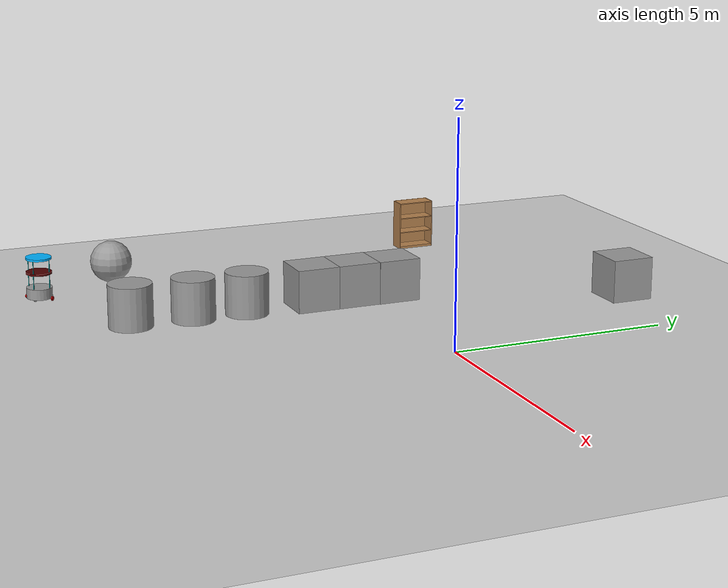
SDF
<sdf version="1.6">
 <world name="default">
  <model name="ground_plane">
   <static>1</static>
   <link name="link">
    <collision name="collision">
     <geometry><plane><normal>0 0 1</normal><size>100 100</size></plane></geometry>
     <surface><friction><ode><mu>100</mu><mu2>50</mu2></ode></friction></surface>
    </collision>
    <visual name="visual">
     <cast_shadows>0</cast_shadows>
     <geometry><plane><normal>0 0 1</normal><size>100 100</size></plane></geometry>
     <material>
      <script><uri>file://media/materials/scripts/gazebo.material</uri><name>Gazebo/Grey</name></script>
     </material>
    </visual>
   </link>
  </model>
  <model name="dummy_robot_model">
   <link name="link_0">
    <pose>0 0.027 0.6025 0 -0 0</pose>
    <inertial>
     <mass>1</mass>
     <inertia><ixx>0.145833</ixx><ixy>0</ixy><ixz>0</ixz><iyy>0.145833</iyy><iyz>0</iyz><izz>0.125</izz></inertia>
    </inertial>
    <visual name="visual">
     <geometry><cylinder><radius>0.3</radius><length>0.05</length></cylinder></geometry>
     <material>
      <lighting>1</lighting>
      <script><uri>file://media/materials/scripts/gazebo.material</uri><name>Gazebo/Grey</name></script>
      <shader type="pixel"><normal_map>__default__</normal_map></shader>
      <ambient>0 0 1 1</ambient>
      <diffuse>0 0.7 1 1</diffuse>
      <specular>0.01 0.01 1 1</specular>
      <emissive>0 0 0 1</emissive>
     </material>
    </visual>
    <collision name="collision">
     <geometry><cylinder><radius>0.3</radius><length>0.05</length></cylinder></geometry>
     <surface>
      <friction>
       <ode><mu>1</mu><mu2>1</mu2><fdir1>0 0 0</fdir1><slip1>0</slip1><slip2>0</slip2></ode>
       <torsional>
        <coefficient>1</coefficient>
        <patch_radius>0</patch_radius>
        <surface_radius>0</surface_radius>
        <use_patch_radius>1</use_patch_radius>
        <ode><slip>0</slip></ode>
       </torsional>
      </friction>
      <bounce><restitution_coefficient>0</restitution_coefficient><threshold>1e+06</threshold></bounce>
      <contact>
       <collide_without_contact>0</collide_without_contact>
       <collide_without_contact_bitmask>1</collide_without_contact_bitmask>
       <collide_bitmask>1</collide_bitmask>
       <ode>
        <soft_cfm>0</soft_cfm>
        <soft_erp>0.2</soft_erp>
        <kp>1e+13</kp>
        <kd>1</kd>
        <max_vel>0.01</max_vel>
        <min_depth>0</min_depth>
       </ode>
       <bullet>
        <split_impulse>1</split_impulse>
        <split_impulse_penetration_threshold>-0.01</split_impulse_penetration_threshold>
        <soft_cfm>0</soft_cfm>
        <soft_erp>0.2</soft_erp>
        <kp>1e+13</kp>
        <kd>1</kd>
       </bullet>
      </contact>
     </surface>
    </collision>
   </link>
   <link name="link_0_clone">
    <pose>0 0.027 -0.2225 0 -0 0</pose>
    <inertial>
     <mass>1</mass>
     <inertia><ixx>0.145833</ixx><ixy>0</ixy><ixz>0</ixz><iyy>0.145833</iyy><iyz>0</iyz><izz>0.125</izz></inertia>
    </inertial>
    <visual name="visual">
     <geometry><cylinder><radius>0.3</radius><length>0.25</length></cylinder></geometry>
     <material>
      <lighting>1</lighting>
      <script><uri>file://media/materials/scripts/gazebo.material</uri><name>Gazebo/Grey</name></script>
      <shader type="pixel"><normal_map>__default__</normal_map></shader>
      <ambient>0.3 0.3 0.3 1</ambient>
      <diffuse>0.7 0.7 0.7 1</diffuse>
      <specular>0.01 0.01 0.01 1</specular>
      <emissive>0 0 0 1</emissive>
     </material>
    </visual>
    <collision name="collision">
     <geometry><cylinder><radius>0.3</radius><length>0.25</length></cylinder></geometry>
     <surface>
      <friction>
       <ode><mu>1</mu><mu2>1</mu2><fdir1>0 0 0</fdir1><slip1>0</slip1><slip2>0</slip2></ode>
       <torsional>
        <coefficient>1</coefficient>
        <patch_radius>0</patch_radius>
        <surface_radius>0</surface_radius>
        <use_patch_radius>1</use_patch_radius>
        <ode><slip>0</slip></ode>
       </torsional>
      </friction>
      <bounce><restitution_coefficient>0</restitution_coefficient><threshold>1e+06</threshold></bounce>
      <contact>
       <collide_without_contact>0</collide_without_contact>
       <collide_without_contact_bitmask>1</collide_without_contact_bitmask>
       <collide_bitmask>1</collide_bitmask>
       <ode>
        <soft_cfm>0</soft_cfm>
        <soft_erp>0.2</soft_erp>
        <kp>1e+13</kp>
        <kd>1</kd>
        <max_vel>0.01</max_vel>
        <min_depth>0</min_depth>
       </ode>
       <bullet>
        <split_impulse>1</split_impulse>
        <split_impulse_penetration_threshold>-0.01</split_impulse_penetration_threshold>
        <soft_cfm>0</soft_cfm>
        <soft_erp>0.2</soft_erp>
        <kp>1e+13</kp>
        <kd>1</kd>
       </bullet>
      </contact>
     </surface>
    </collision>
   </link>
   <link name="link_0_clone_0">
    <pose>0 0.027 0.2525 0 -0 0</pose>
    <inertial>
     <mass>1</mass>
     <inertia><ixx>0.145833</ixx><ixy>0</ixy><ixz>0</ixz><iyy>0.145833</iyy><iyz>0</iyz><izz>0.125</izz></inertia>
    </inertial>
    <visual name="visual">
     <geometry><cylinder><radius>0.3</radius><length>0.05</length></cylinder></geometry>
     <material>
      <lighting>1</lighting>
      <script><uri>file://media/materials/scripts/gazebo.material</uri><name>Gazebo/Grey</name></script>
      <shader type="pixel"><normal_map>__default__</normal_map></shader>
      <ambient>0.3 0 0 0</ambient>
      <diffuse>0.7 0.7 0.7 1</diffuse>
      <specular>0.01 0.01 0.01 1</specular>
      <emissive>0 0 0 1</emissive>
     </material>
    </visual>
    <collision name="collision">
     <geometry><cylinder><radius>0.3</radius><length>0.05</length></cylinder></geometry>
     <surface>
      <friction>
       <ode><mu>1</mu><mu2>1</mu2><fdir1>0 0 0</fdir1><slip1>0</slip1><slip2>0</slip2></ode>
       <torsional>
        <coefficient>1</coefficient>
        <patch_radius>0</patch_radius>
        <surface_radius>0</surface_radius>
        <use_patch_radius>1</use_patch_radius>
        <ode><slip>0</slip></ode>
       </torsional>
      </friction>
      <bounce><restitution_coefficient>0</restitution_coefficient><threshold>1e+06</threshold></bounce>
      <contact>
       <collide_without_contact>0</collide_without_contact>
       <collide_without_contact_bitmask>1</collide_without_contact_bitmask>
       <collide_bitmask>1</collide_bitmask>
       <ode>
        <soft_cfm>0</soft_cfm>
        <soft_erp>0.2</soft_erp>
        <kp>1e+13</kp>
        <kd>1</kd>
        <max_vel>0.01</max_vel>
        <min_depth>0</min_depth>
       </ode>
       <bullet>
        <split_impulse>1</split_impulse>
        <split_impulse_penetration_threshold>-0.01</split_impulse_penetration_threshold>
        <soft_cfm>0</soft_cfm>
        <soft_erp>0.2</soft_erp>
        <kp>1e+13</kp>
        <kd>1</kd>
       </bullet>
      </contact>
     </surface>
    </collision>
   </link>
   <link name="link_1">
    <pose>-0.27 0.027 0.2525 0 -0 0</pose>
    <inertial>
     <mass>1</mass>
     <inertia><ixx>0.145833</ixx><ixy>0</ixy><ixz>0</ixz><iyy>0.145833</iyy><iyz>0</iyz><izz>0.125</izz></inertia>
    </inertial>
    <visual name="visual">
     <geometry><cylinder><radius>0.01</radius><length>0.72</length></cylinder></geometry>
     <material>
      <lighting>1</lighting>
      <script><uri>file://media/materials/scripts/gazebo.material</uri><name>Gazebo/Grey</name></script>
      <shader type="pixel"><normal_map>__default__</normal_map></shader>
      <ambient>0 0.3 0.3 1</ambient>
      <diffuse>0 0.7 0.7 1</diffuse>
      <specular>0 0.01 0.01 1</specular>
      <emissive>0 0 0 1</emissive>
     </material>
    </visual>
    <collision name="collision">
     <geometry><cylinder><radius>0.01</radius><length>0.72</length></cylinder></geometry>
     <surface>
      <friction>
       <ode><mu>1</mu><mu2>1</mu2><fdir1>0 0 0</fdir1><slip1>0</slip1><slip2>0</slip2></ode>
       <torsional>
        <coefficient>1</coefficient>
        <patch_radius>0</patch_radius>
        <surface_radius>0</surface_radius>
        <use_patch_radius>1</use_patch_radius>
        <ode><slip>0</slip></ode>
       </torsional>
      </friction>
      <bounce><restitution_coefficient>0</restitution_coefficient><threshold>1e+06</threshold></bounce>
      <contact>
       <collide_without_contact>0</collide_without_contact>
       <collide_without_contact_bitmask>1</collide_without_contact_bitmask>
       <collide_bitmask>1</collide_bitmask>
       <ode>
        <soft_cfm>0</soft_cfm>
        <soft_erp>0.2</soft_erp>
        <kp>1e+13</kp>
        <kd>1</kd>
        <max_vel>0.01</max_vel>
        <min_depth>0</min_depth>
       </ode>
       <bullet>
        <split_impulse>1</split_impulse>
        <split_impulse_penetration_threshold>-0.01</split_impulse_penetration_threshold>
        <soft_cfm>0</soft_cfm>
        <soft_erp>0.2</soft_erp>
        <kp>1e+13</kp>
        <kd>1</kd>
       </bullet>
      </contact>
     </surface>
    </collision>
   </link>
   <link name="link_1_clone">
    <pose>0 -0.243 0.2525 0 -0 0</pose>
    <inertial>
     <mass>1</mass>
     <inertia><ixx>0.145833</ixx><ixy>0</ixy><ixz>0</ixz><iyy>0.145833</iyy><iyz>0</iyz><izz>0.125</izz></inertia>
    </inertial>
    <visual name="visual">
     <geometry><cylinder><radius>0.01</radius><length>0.72</length></cylinder></geometry>
     <material>
      <lighting>1</lighting>
      <script><uri>file://media/materials/scripts/gazebo.material</uri><name>Gazebo/Grey</name></script>
      <shader type="pixel"><normal_map>__default__</normal_map></shader>
      <ambient>0 0.3 0.3 1</ambient>
      <diffuse>0 0.7 0.7 1</diffuse>
      <specular>0 0.01 0.01 1</specular>
      <emissive>0 0 0 1</emissive>
     </material>
    </visual>
    <collision name="collision">
     <geometry><cylinder><radius>0.01</radius><length>0.72</length></cylinder></geometry>
     <surface>
      <friction>
       <ode><mu>1</mu><mu2>1</mu2><fdir1>0 0 0</fdir1><slip1>0</slip1><slip2>0</slip2></ode>
       <torsional>
        <coefficient>1</coefficient>
        <patch_radius>0</patch_radius>
        <surface_radius>0</surface_radius>
        <use_patch_radius>1</use_patch_radius>
        <ode><slip>0</slip></ode>
       </torsional>
      </friction>
      <bounce><restitution_coefficient>0</restitution_coefficient><threshold>1e+06</threshold></bounce>
      <contact>
       <collide_without_contact>0</collide_without_contact>
       <collide_without_contact_bitmask>1</collide_without_contact_bitmask>
       <collide_bitmask>1</collide_bitmask>
       <ode>
        <soft_cfm>0</soft_cfm>
        <soft_erp>0.2</soft_erp>
        <kp>1e+13</kp>
        <kd>1</kd>
        <max_vel>0.01</max_vel>
        <min_depth>0</min_depth>
       </ode>
       <bullet>
        <split_impulse>1</split_impulse>
        <split_impulse_penetration_threshold>-0.01</split_impulse_penetration_threshold>
        <soft_cfm>0</soft_cfm>
        <soft_erp>0.2</soft_erp>
        <kp>1e+13</kp>
        <kd>1</kd>
       </bullet>
      </contact>
     </surface>
    </collision>
   </link>
   <link name="link_1_clone_clone">
    <pose>0.27 0.027 0.2525 0 -0 0</pose>
    <inertial>
     <mass>1</mass>
     <inertia><ixx>0.145833</ixx><ixy>0</ixy><ixz>0</ixz><iyy>0.145833</iyy><iyz>0</iyz><izz>0.125</izz></inertia>
    </inertial>
    <visual name="visual">
     <geometry><cylinder><radius>0.01</radius><length>0.72</length></cylinder></geometry>
     <material>
      <lighting>1</lighting>
      <script><uri>file://media/materials/scripts/gazebo.material</uri><name>Gazebo/Grey</name></script>
      <shader type="pixel"><normal_map>__default__</normal_map></shader>
      <ambient>0 0.3 0.3 1</ambient>
      <diffuse>0 0.7 0.7 1</diffuse>
      <specular>0 0.01 0.01 1</specular>
      <emissive>0 0 0 1</emissive>
     </material>
    </visual>
    <collision name="collision">
     <geometry><cylinder><radius>0.01</radius><length>0.72</length></cylinder></geometry>
     <surface>
      <friction>
       <ode><mu>1</mu><mu2>1</mu2><fdir1>0 0 0</fdir1><slip1>0</slip1><slip2>0</slip2></ode>
       <torsional>
        <coefficient>1</coefficient>
        <patch_radius>0</patch_radius>
        <surface_radius>0</surface_radius>
        <use_patch_radius>1</use_patch_radius>
        <ode><slip>0</slip></ode>
       </torsional>
      </friction>
      <bounce><restitution_coefficient>0</restitution_coefficient><threshold>1e+06</threshold></bounce>
      <contact>
       <collide_without_contact>0</collide_without_contact>
       <collide_without_contact_bitmask>1</collide_without_contact_bitmask>
       <collide_bitmask>1</collide_bitmask>
       <ode>
        <soft_cfm>0</soft_cfm>
        <soft_erp>0.2</soft_erp>
        <kp>1e+13</kp>
        <kd>1</kd>
        <max_vel>0.01</max_vel>
        <min_depth>0</min_depth>
       </ode>
       <bullet>
        <split_impulse>1</split_impulse>
        <split_impulse_penetration_threshold>-0.01</split_impulse_penetration_threshold>
        <soft_cfm>0</soft_cfm>
        <soft_erp>0.2</soft_erp>
        <kp>1e+13</kp>
        <kd>1</kd>
       </bullet>
      </contact>
     </surface>
    </collision>
   </link>
   <link name="link_2">
    <pose>-0 0.227 -0.3475 0 -0 0</pose>
    <inertial>
     <mass>1</mass>
     <inertia><ixx>0.1</ixx><ixy>0</ixy><ixz>0</ixz><iyy>0.1</iyy><iyz>0</iyz><izz>0.1</izz></inertia>
    </inertial>
    <visual name="visual">
     <geometry><sphere><radius>0.055</radius></sphere></geometry>
     <material>
      <lighting>1</lighting>
      <script><uri>file://media/materials/scripts/gazebo.material</uri><name>Gazebo/Grey</name></script>
      <shader type="pixel"><normal_map>__default__</normal_map></shader>
      <ambient>0.3 0.3 0.3 1</ambient>
      <diffuse>0 0 0.7 1</diffuse>
      <specular>0 0 0.01 1</specular>
      <emissive>0 0 1 1</emissive>
     </material>
    </visual>
    <collision name="collision">
     <geometry><sphere><radius>0.055</radius></sphere></geometry>
     <surface>
      <friction>
       <ode><mu>0</mu><mu2>0</mu2><fdir1>0 0 0</fdir1><slip1>1</slip1><slip2>1</slip2></ode>
       <torsional>
        <coefficient>1</coefficient>
        <patch_radius>0</patch_radius>
        <surface_radius>0</surface_radius>
        <use_patch_radius>1</use_patch_radius>
        <ode><slip>0</slip></ode>
       </torsional>
      </friction>
      <bounce><restitution_coefficient>0</restitution_coefficient><threshold>1e+06</threshold></bounce>
      <contact>
       <collide_without_contact>0</collide_without_contact>
       <collide_without_contact_bitmask>1</collide_without_contact_bitmask>
       <collide_bitmask>1</collide_bitmask>
       <ode>
        <soft_cfm>0</soft_cfm>
        <soft_erp>0.2</soft_erp>
        <kp>1e+13</kp>
        <kd>1</kd>
        <max_vel>0.01</max_vel>
        <min_depth>0</min_depth>
       </ode>
       <bullet>
        <split_impulse>1</split_impulse>
        <split_impulse_penetration_threshold>-0.01</split_impulse_penetration_threshold>
        <soft_cfm>0</soft_cfm>
        <soft_erp>0.2</soft_erp>
        <kp>1e+13</kp>
        <kd>1</kd>
       </bullet>
      </contact>
     </surface>
    </collision>
   </link>
   <link name="link_2_clone">
    <pose>0 -0.173 -0.3475 0 -0 0</pose>
    <inertial>
     <mass>1</mass>
     <inertia><ixx>0.1</ixx><ixy>0</ixy><ixz>0</ixz><iyy>0.1</iyy><iyz>0</iyz><izz>0.1</izz></inertia>
    </inertial>
    <visual name="visual">
     <geometry><sphere><radius>0.055</radius></sphere></geometry>
     <material>
      <lighting>1</lighting>
      <script><uri>file://media/materials/scripts/gazebo.material</uri><name>Gazebo/Grey</name></script>
      <shader type="pixel"><normal_map>__default__</normal_map></shader>
      <ambient>0.3 0.3 0.3 1</ambient>
      <diffuse>0.7 0.7 0.7 1</diffuse>
      <specular>0.01 0.01 0.01 1</specular>
      <emissive>0 0 0 1</emissive>
     </material>
    </visual>
    <collision name="collision">
     <geometry><sphere><radius>0.055</radius></sphere></geometry>
     <surface>
      <friction>
       <ode><mu>1</mu><mu2>1</mu2><fdir1>0 0 0</fdir1><slip1>0</slip1><slip2>0</slip2></ode>
       <torsional>
        <coefficient>1</coefficient>
        <patch_radius>0</patch_radius>
        <surface_radius>0</surface_radius>
        <use_patch_radius>1</use_patch_radius>
        <ode><slip>0</slip></ode>
       </torsional>
      </friction>
      <bounce><restitution_coefficient>0</restitution_coefficient><threshold>1e+06</threshold></bounce>
      <contact>
       <collide_without_contact>0</collide_without_contact>
       <collide_without_contact_bitmask>1</collide_without_contact_bitmask>
       <collide_bitmask>1</collide_bitmask>
       <ode>
        <soft_cfm>0</soft_cfm>
        <soft_erp>0.2</soft_erp>
        <kp>1e+13</kp>
        <kd>1</kd>
        <max_vel>0.01</max_vel>
        <min_depth>0</min_depth>
       </ode>
       <bullet>
        <split_impulse>1</split_impulse>
        <split_impulse_penetration_threshold>-0.01</split_impulse_penetration_threshold>
        <soft_cfm>0</soft_cfm>
        <soft_erp>0.2</soft_erp>
        <kp>1e+13</kp>
        <kd>1</kd>
       </bullet>
      </contact>
     </surface>
    </collision>
   </link>
   <link name="link_3">
    <pose>0.33 0.027 -0.3475 -0.000314 -1.5707 0.000314</pose>
    <inertial>
     <mass>1</mass>
     <inertia><ixx>0.145833</ixx><ixy>0</ixy><ixz>0</ixz><iyy>0.145833</iyy><iyz>0</iyz><izz>0.125</izz></inertia>
    </inertial>
    <visual name="visual">
     <geometry><cylinder><radius>0.05</radius><length>0.03</length></cylinder></geometry>
     <material>
      <lighting>1</lighting>
      <script><uri>file://media/materials/scripts/gazebo.material</uri><name>Gazebo/Grey</name></script>
      <shader type="pixel"><normal_map>__default__</normal_map></shader>
      <ambient>0.3 0 0 0</ambient>
      <diffuse>0.7 0 0 0</diffuse>
      <specular>0.01 0 0 0</specular>
      <emissive>1 0 0 0</emissive>
     </material>
    </visual>
    <collision name="collision">
     <geometry><cylinder><radius>0.05</radius><length>0.03</length></cylinder></geometry>
     <surface>
      <friction>
       <ode><mu>1</mu><mu2>1</mu2><fdir1>0 0 0</fdir1><slip1>0</slip1><slip2>0</slip2></ode>
       <torsional>
        <coefficient>1</coefficient>
        <patch_radius>0</patch_radius>
        <surface_radius>0</surface_radius>
        <use_patch_radius>1</use_patch_radius>
        <ode><slip>0</slip></ode>
       </torsional>
      </friction>
      <bounce><restitution_coefficient>0</restitution_coefficient><threshold>1e+06</threshold></bounce>
      <contact>
       <collide_without_contact>0</collide_without_contact>
       <collide_without_contact_bitmask>1</collide_without_contact_bitmask>
       <collide_bitmask>1</collide_bitmask>
       <ode>
        <soft_cfm>0</soft_cfm>
        <soft_erp>0.2</soft_erp>
        <kp>1e+13</kp>
        <kd>1</kd>
        <max_vel>0.01</max_vel>
        <min_depth>0</min_depth>
       </ode>
       <bullet>
        <split_impulse>1</split_impulse>
        <split_impulse_penetration_threshold>-0.01</split_impulse_penetration_threshold>
        <soft_cfm>0</soft_cfm>
        <soft_erp>0.2</soft_erp>
        <kp>1e+13</kp>
        <kd>1</kd>
       </bullet>
      </contact>
     </surface>
    </collision>
   </link>
   <link name="link_3_clone">
    <pose>-0.33 0.027 -0.3475 -0.000314 -1.5707 0.000314</pose>
    <inertial>
     <mass>1</mass>
     <inertia><ixx>0.145833</ixx><ixy>0</ixy><ixz>0</ixz><iyy>0.145833</iyy><iyz>0</iyz><izz>0.125</izz></inertia>
    </inertial>
    <visual name="visual">
     <geometry><cylinder><radius>0.05</radius><length>0.03</length></cylinder></geometry>
     <material>
      <lighting>1</lighting>
      <script><uri>file://media/materials/scripts/gazebo.material</uri><name>Gazebo/Grey</name></script>
      <shader type="pixel"><normal_map>__default__</normal_map></shader>
      <ambient>0.3 0 0 0</ambient>
      <diffuse>0.7 0 0 0</diffuse>
      <specular>0.01 0 0 0</specular>
      <emissive>1 0 0 0</emissive>
     </material>
    </visual>
    <collision name="collision">
     <geometry><cylinder><radius>0.05</radius><length>0.03</length></cylinder></geometry>
     <surface>
      <friction>
       <ode><mu>1</mu><mu2>1</mu2><fdir1>0 0 0</fdir1><slip1>0</slip1><slip2>0</slip2></ode>
       <torsional>
        <coefficient>1</coefficient>
        <patch_radius>0</patch_radius>
        <surface_radius>0</surface_radius>
        <use_patch_radius>1</use_patch_radius>
        <ode><slip>0</slip></ode>
       </torsional>
      </friction>
      <bounce><restitution_coefficient>0</restitution_coefficient><threshold>1e+06</threshold></bounce>
      <contact>
       <collide_without_contact>0</collide_without_contact>
       <collide_without_contact_bitmask>1</collide_without_contact_bitmask>
       <collide_bitmask>1</collide_bitmask>
       <ode>
        <soft_cfm>0</soft_cfm>
        <soft_erp>0.2</soft_erp>
        <kp>1e+13</kp>
        <kd>1</kd>
        <max_vel>0.01</max_vel>
        <min_depth>0</min_depth>
       </ode>
       <bullet>
        <split_impulse>1</split_impulse>
        <split_impulse_penetration_threshold>-0.01</split_impulse_penetration_threshold>
        <soft_cfm>0</soft_cfm>
        <soft_erp>0.2</soft_erp>
        <kp>1e+13</kp>
        <kd>1</kd>
       </bullet>
      </contact>
     </surface>
    </collision>
   </link>
   <joint name="link_0_JOINT_0" type="screw">
    <parent>link_0</parent>
    <child>link_1_clone_clone</child>
    <axis>
     <xyz>0 0 1</xyz>
     <use_parent_model_frame>0</use_parent_model_frame>
     <limit>
      <lower>-1.79769e+308</lower>
      <upper>1.79769e+308</upper>
      <effort>-1</effort>
      <velocity>-1</velocity>
     </limit>
     <dynamics>
      <spring_reference>0</spring_reference>
      <spring_stiffness>0</spring_stiffness>
      <damping>0</damping>
      <friction>0</friction>
     </dynamics>
    </axis>
    <physics>
     <ode><limit><cfm>0</cfm><erp>0.2</erp></limit><suspension><cfm>0</cfm><erp>0.2</erp></suspension></ode>
    </physics>
    <thread_pitch>1</thread_pitch>
   </joint>
   <joint name="link_0_JOINT_1" type="screw">
    <parent>link_0</parent>
    <child>link_1</child>
    <axis>
     <xyz>0 0 1</xyz>
     <use_parent_model_frame>0</use_parent_model_frame>
     <limit>
      <lower>-1.79769e+308</lower>
      <upper>1.79769e+308</upper>
      <effort>-1</effort>
      <velocity>-1</velocity>
     </limit>
     <dynamics>
      <spring_reference>0</spring_reference>
      <spring_stiffness>0</spring_stiffness>
      <damping>0</damping>
      <friction>0</friction>
     </dynamics>
    </axis>
    <physics>
     <ode><limit><cfm>0</cfm><erp>0.2</erp></limit><suspension><cfm>0</cfm><erp>0.2</erp></suspension></ode>
    </physics>
    <thread_pitch>1</thread_pitch>
   </joint>
   <joint name="link_0_JOINT_2" type="screw">
    <parent>link_0</parent>
    <child>link_1_clone</child>
    <axis>
     <xyz>0 0 1</xyz>
     <use_parent_model_frame>0</use_parent_model_frame>
     <limit>
      <lower>-1.79769e+308</lower>
      <upper>1.79769e+308</upper>
      <effort>-1</effort>
      <velocity>-1</velocity>
     </limit>
     <dynamics>
      <spring_reference>0</spring_reference>
      <spring_stiffness>0</spring_stiffness>
      <damping>0</damping>
      <friction>0</friction>
     </dynamics>
    </axis>
    <physics>
     <ode><limit><cfm>0</cfm><erp>0.2</erp></limit><suspension><cfm>0</cfm><erp>0.2</erp></suspension></ode>
    </physics>
    <thread_pitch>1</thread_pitch>
   </joint>
   <joint name="link_0_clone_0_JOINT_3" type="fixed">
    <parent>link_0_clone_0</parent>
    <child>link_1_clone_clone</child>
    <physics>
     <ode><limit><cfm>0</cfm><erp>0.2</erp></limit><suspension><cfm>0</cfm><erp>0.2</erp></suspension></ode>
    </physics>
   </joint>
   <joint name="link_0_clone_0_JOINT_4" type="fixed">
    <parent>link_0_clone_0</parent>
    <child>link_1</child>
    <physics>
     <ode><limit><cfm>0</cfm><erp>0.2</erp></limit><suspension><cfm>0</cfm><erp>0.2</erp></suspension></ode>
    </physics>
   </joint>
   <joint name="link_0_clone_0_JOINT_5" type="fixed">
    <parent>link_0_clone_0</parent>
    <child>link_1_clone</child>
    <physics>
     <ode><limit><cfm>0</cfm><erp>0.2</erp></limit><suspension><cfm>0</cfm><erp>0.2</erp></suspension></ode>
    </physics>
   </joint>
   <joint name="link_0_clone_JOINT_0" type="fixed">
    <parent>link_0_clone</parent>
    <child>link_2_clone</child>
    <physics>
     <ode><limit><cfm>0</cfm><erp>0.2</erp></limit><suspension><cfm>0</cfm><erp>0.2</erp></suspension></ode>
    </physics>
   </joint>
   <joint name="link_0_clone_JOINT_10" type="fixed">
    <parent>link_0_clone</parent>
    <child>link_2</child>
    <physics>
     <ode><limit><cfm>0</cfm><erp>0.2</erp></limit><suspension><cfm>0</cfm><erp>0.2</erp></suspension></ode>
    </physics>
   </joint>
   <joint name="link_0_clone_JOINT_11" type="revolute">
    <parent>link_0_clone</parent>
    <child>link_3_clone</child>
    <pose>-0.01 0 0 0 -0 0</pose>
    <axis>
     <xyz>0 0 -1</xyz>
     <use_parent_model_frame>0</use_parent_model_frame>
     <limit>
      <lower>-1.79769e+308</lower>
      <upper>1.79769e+308</upper>
      <effort>-1</effort>
      <velocity>-1</velocity>
     </limit>
     <dynamics>
      <spring_reference>0</spring_reference>
      <spring_stiffness>0</spring_stiffness>
      <damping>0</damping>
      <friction>0</friction>
     </dynamics>
    </axis>
    <physics>
     <ode><limit><cfm>0</cfm><erp>0.2</erp></limit><suspension><cfm>0</cfm><erp>0.2</erp></suspension></ode>
    </physics>
   </joint>
   <joint name="link_0_clone_JOINT_12" type="revolute">
    <parent>link_0_clone</parent>
    <child>link_3</child>
    <axis>
     <xyz>0 0 1</xyz>
     <use_parent_model_frame>0</use_parent_model_frame>
     <limit>
      <lower>-1.79769e+308</lower>
      <upper>1.79769e+308</upper>
      <effort>-1</effort>
      <velocity>-1</velocity>
     </limit>
     <dynamics>
      <spring_reference>0</spring_reference>
      <spring_stiffness>0</spring_stiffness>
      <damping>0</damping>
      <friction>0</friction>
     </dynamics>
    </axis>
    <physics>
     <ode><limit><cfm>0</cfm><erp>0.2</erp></limit><suspension><cfm>0</cfm><erp>0.2</erp></suspension></ode>
    </physics>
   </joint>
   <joint name="link_0_clone_JOINT_6" type="fixed">
    <parent>link_0_clone</parent>
    <child>link_1_clone</child>
    <physics>
     <ode><limit><cfm>0</cfm><erp>0.2</erp></limit><suspension><cfm>0</cfm><erp>0.2</erp></suspension></ode>
    </physics>
   </joint>
   <joint name="link_0_clone_JOINT_7" type="fixed">
    <parent>link_0_clone</parent>
    <child>link_1_clone_clone</child>
    <physics>
     <ode><limit><cfm>0</cfm><erp>0.2</erp></limit><suspension><cfm>0</cfm><erp>0.2</erp></suspension></ode>
    </physics>
   </joint>
   <joint name="link_0_clone_JOINT_8" type="fixed">
    <parent>link_0_clone</parent>
    <child>link_1</child>
    <physics>
     <ode><limit><cfm>0</cfm><erp>0.2</erp></limit><suspension><cfm>0</cfm><erp>0.2</erp></suspension></ode>
    </physics>
   </joint>
   <static>0</static>
   <pose>-7.19966 -7.26161 0.40246 7e-06 0.014487 0.880374</pose>
  </model>
  <model name="bookshelf">
   <static>1</static>
   <link name="link">
    <inertial><mass>1</mass></inertial>
    <collision name="back">
     <pose>0 0.005 0.6 0 -0 0</pose>
     <geometry><box><size>0.9 0.01 1.2</size></box></geometry>
    </collision>
    <visual name="visual1">
     <pose>0 0.005 0.6 0 -0 0</pose>
     <geometry><box><size>0.9 0.01 1.2</size></box></geometry>
     <material>
      <script><uri>file://media/materials/scripts/gazebo.material</uri><name>Gazebo/Wood</name></script>
     </material>
    </visual>
    <collision name="left_side">
     <pose>0.45 -0.195 0.6 0 -0 0</pose>
     <geometry><box><size>0.02 0.4 1.2</size></box></geometry>
    </collision>
    <visual name="visual2">
     <pose>0.45 -0.195 0.6 0 -0 0</pose>
     <geometry><box><size>0.02 0.4 1.2</size></box></geometry>
     <material>
      <script><uri>file://media/materials/scripts/gazebo.material</uri><name>Gazebo/Wood</name></script>
     </material>
    </visual>
    <collision name="right_side">
     <pose>-0.45 -0.195 0.6 0 -0 0</pose>
     <geometry><box><size>0.02 0.4 1.2</size></box></geometry>
    </collision>
    <visual name="visual3">
     <pose>-0.45 -0.195 0.6 0 -0 0</pose>
     <geometry><box><size>0.02 0.4 1.2</size></box></geometry>
     <material>
      <script><uri>file://media/materials/scripts/gazebo.material</uri><name>Gazebo/Wood</name></script>
     </material>
    </visual>
    <collision name="bottom">
     <pose>0 -0.195 0.03 0 -0 0</pose>
     <geometry><box><size>0.88 0.4 0.06</size></box></geometry>
    </collision>
    <visual name="visual4">
     <pose>0 -0.195 0.03 0 -0 0</pose>
     <geometry><box><size>0.88 0.4 0.06</size></box></geometry>
     <material>
      <script><uri>file://media/materials/scripts/gazebo.material</uri><name>Gazebo/Wood</name></script>
     </material>
    </visual>
    <collision name="top">
     <pose>0 -0.195 1.19 0 -0 0</pose>
     <geometry><box><size>0.88 0.4 0.02</size></box></geometry>
    </collision>
    <visual name="visual5">
     <pose>0 -0.195 1.19 0 -0 0</pose>
     <geometry><box><size>0.88 0.4 0.02</size></box></geometry>
     <material>
      <script><uri>file://media/materials/scripts/gazebo.material</uri><name>Gazebo/Wood</name></script>
     </material>
    </visual>
    <collision name="low_shelf">
     <pose>0 -0.195 0.43 0 -0 0</pose>
     <geometry><box><size>0.88 0.4 0.02</size></box></geometry>
    </collision>
    <visual name="visual6">
     <pose>0 -0.195 0.43 0 -0 0</pose>
     <geometry><box><size>0.88 0.4 0.02</size></box></geometry>
     <material>
      <script><uri>file://media/materials/scripts/gazebo.material</uri><name>Gazebo/Wood</name></script>
     </material>
    </visual>
    <collision name="high_shelf">
     <pose>0 -0.195 0.8 0 -0 0</pose>
     <geometry><box><size>0.88 0.4 0.02</size></box></geometry>
    </collision>
    <visual name="visual7">
     <pose>0 -0.195 0.8 0 -0 0</pose>
     <geometry><box><size>0.88 0.4 0.02</size></box></geometry>
     <material>
      <script><uri>file://media/materials/scripts/gazebo.material</uri><name>Gazebo/Wood</name></script>
     </material>
    </visual>
   </link>
   <pose>-8.59977 2.84481 0 0 -0 1.58485</pose>
  </model>
  <model name="unit_box_1">
   <pose>-2.31079 5.45486 0.5 0 -0 0</pose>
   <link name="link">
    <inertial>
     <mass>1</mass>
     <inertia>
      <ixx>0.166667</ixx>
      <ixy>0</ixy>
      <ixz>0</ixz>
      <iyy>0.166667</iyy>
      <iyz>0</iyz>
      <izz>0.166667</izz>
     </inertia>
    </inertial>
    <collision name="collision"><geometry><box><size>1 1 1</size></box></geometry></collision>
    <visual name="visual">
     <geometry><box><size>1 1 1</size></box></geometry>
     <material>
      <script><name>Gazebo/Grey</name><uri>file://media/materials/scripts/gazebo.material</uri></script>
     </material>
    </visual>
   </link>
  </model>
  <model name="unit_box_2">
   <pose>-4.30684 -1.57422 0.5 0 -0 0.007102</pose>
   <link name="link">
    <inertial>
     <mass>1</mass>
     <inertia>
      <ixx>0.166667</ixx>
      <ixy>0</ixy>
      <ixz>0</ixz>
      <iyy>0.166667</iyy>
      <iyz>0</iyz>
      <izz>0.166667</izz>
     </inertia>
    </inertial>
    <collision name="collision"><geometry><box><size>1 1 1</size></box></geometry></collision>
    <visual name="visual">
     <geometry><box><size>1 1 1</size></box></geometry>
     <material>
      <script><name>Gazebo/Grey</name><uri>file://media/materials/scripts/gazebo.material</uri></script>
     </material>
    </visual>
   </link>
  </model>
  <model name="unit_box_3">
   <pose>-4.314 -0.574215 0.5 0 -0 0.007043</pose>
   <link name="link">
    <inertial>
     <mass>1</mass>
     <inertia>
      <ixx>0.166667</ixx>
      <ixy>0</ixy>
      <ixz>0</ixz>
      <iyy>0.166667</iyy>
      <iyz>0</iyz>
      <izz>0.166667</izz>
     </inertia>
    </inertial>
    <collision name="collision"><geometry><box><size>1 1 1</size></box></geometry></collision>
    <visual name="visual">
     <geometry><box><size>1 1 1</size></box></geometry>
     <material>
      <script><name>Gazebo/Grey</name><uri>file://media/materials/scripts/gazebo.material</uri></script>
     </material>
    </visual>
   </link>
  </model>
  <model name="unit_box_4">
   <pose>-4.30302 0.42591 0.5 0 -0 0.007037</pose>
   <link name="link">
    <inertial>
     <mass>1</mass>
     <inertia>
      <ixx>0.166667</ixx>
      <ixy>0</ixy>
      <ixz>0</ixz>
      <iyy>0.166667</iyy>
      <iyz>0</iyz>
      <izz>0.166667</izz>
     </inertia>
    </inertial>
    <collision name="collision"><geometry><box><size>1 1 1</size></box></geometry></collision>
    <visual name="visual">
     <geometry><box><size>1 1 1</size></box></geometry>
     <material>
      <script><name>Gazebo/Grey</name><uri>file://media/materials/scripts/gazebo.material</uri></script>
     </material>
    </visual>
   </link>
  </model>
  <model name="unit_cylinder_1">
   <pose>-4.29954 -3.14448 0.49999 0 -0 0</pose>
   <link name="link">
    <inertial>
     <mass>1</mass>
     <inertia><ixx>0.145833</ixx><ixy>0</ixy><ixz>0</ixz><iyy>0.145833</iyy><iyz>0</iyz><izz>0.125</izz></inertia>
    </inertial>
    <collision name="collision">
     <geometry><cylinder><radius>0.5</radius><length>1</length></cylinder></geometry>
    </collision>
    <visual name="visual">
     <geometry><cylinder><radius>0.5</radius><length>1</length></cylinder></geometry>
     <material>
      <script><name>Gazebo/Grey</name><uri>file://media/materials/scripts/gazebo.material</uri></script>
     </material>
    </visual>
   </link>
  </model>
  <model name="unit_cylinder_2">
   <pose>-4.29954 -4.40948 0.5 0 -0 0</pose>
   <link name="link">
    <inertial>
     <mass>1</mass>
     <inertia><ixx>0.145833</ixx><ixy>0</ixy><ixz>0</ixz><iyy>0.145833</iyy><iyz>0</iyz><izz>0.125</izz></inertia>
    </inertial>
    <collision name="collision">
     <geometry><cylinder><radius>0.5</radius><length>1</length></cylinder></geometry>
    </collision>
    <visual name="visual">
     <geometry><cylinder><radius>0.5</radius><length>1</length></cylinder></geometry>
     <material>
      <script><name>Gazebo/Grey</name><uri>file://media/materials/scripts/gazebo.material</uri></script>
     </material>
    </visual>
   </link>
  </model>
  <model name="unit_cylinder_3">
   <pose>-4.34945 -5.83708 0.499992 -3e-06 4e-06 0</pose>
   <link name="link">
    <inertial>
     <mass>1</mass>
     <inertia><ixx>0.145833</ixx><ixy>0</ixy><ixz>0</ixz><iyy>0.145833</iyy><iyz>0</iyz><izz>0.125</izz></inertia>
    </inertial>
    <collision name="collision">
     <geometry><cylinder><radius>0.5</radius><length>1</length></cylinder></geometry>
    </collision>
    <visual name="visual">
     <geometry><cylinder><radius>0.5</radius><length>1</length></cylinder></geometry>
     <material>
      <script><name>Gazebo/Grey</name><uri>file://media/materials/scripts/gazebo.material</uri></script>
     </material>
    </visual>
   </link>
  </model>
  <model name="unit_sphere_1">
   <pose>-8.09798 -5.30534 0.5 0 -0 0</pose>
   <link name="link">
    <inertial>
     <mass>1</mass>
     <inertia><ixx>0.1</ixx><ixy>0</ixy><ixz>0</ixz><iyy>0.1</iyy><iyz>0</iyz><izz>0.1</izz></inertia>
    </inertial>
    <collision name="collision"><geometry><sphere><radius>0.5</radius></sphere></geometry></collision>
    <visual name="visual">
     <geometry><sphere><radius>0.5</radius></sphere></geometry>
     <material>
      <script><name>Gazebo/Grey</name><uri>file://media/materials/scripts/gazebo.material</uri></script>
     </material>
    </visual>
   </link>
  </model>
 </world>
</sdf>
